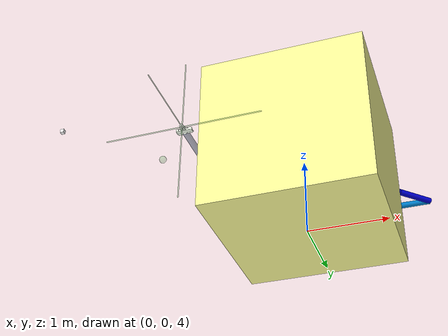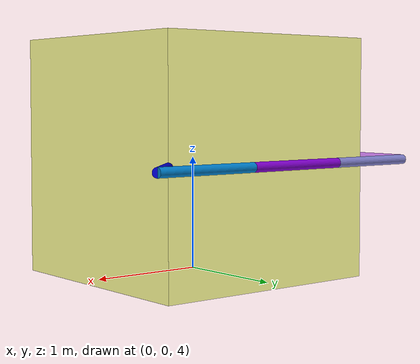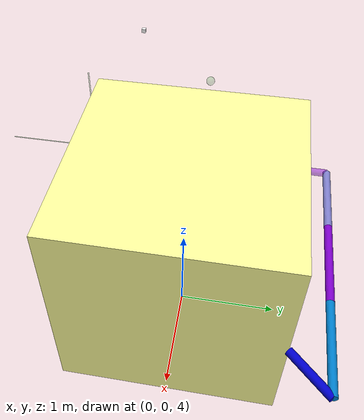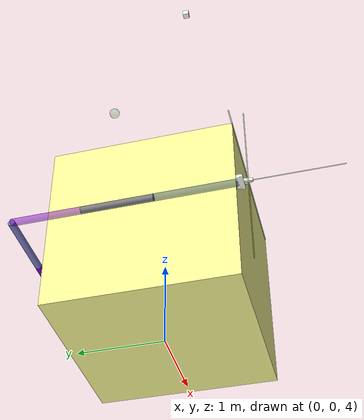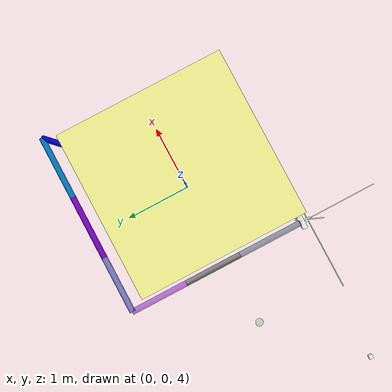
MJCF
<?xml version="1.0" ?>
<mujoco model="free_floating_spacecraft_manipulator">
    <compiler angle="radian" coordinate="local"/>
    <option timestep="0.002" iterations="20">
        <flag gravity="disable" />
    </option>
    <asset>
        <texture name="texplane" type="2d" builtin="checker" rgb1=".2 .3 .4" rgb2=".1 0.15 0.2" width="512" height="512"/>
        <material name="MatGnd" reflectance="0.5" texture="texplane" texrepeat="1 1" texuniform="true"/>
        <material name="block_mat" specular="0" shininess="0.5" reflectance="0" rgba="1 1 1 1"/>
        <mesh name="hand_col" file="meshes/collision/hand.stl"/>
        <mesh name="finger_col" file="meshes/collision/finger.stl" scale='1.75 1.0 1.75'/>
        <mesh name="hand_viz" file="meshes/visual/hand.stl"/>
        <mesh name="finger_viz" file="meshes/collision/finger.stl" scale='1.75 1.0 1.75'/>
    </asset>
    <size njmax="500" nconmax="100" />

    <default>
        <default class="panda">
            <joint pos="0 0 0" axis="0 0 1" limited="true"/>
            <position forcelimited="true" ctrllimited="true" user="1002 40 2001 -0.005 0.005"/>
            <default class="spaceRobot_viz">
                <geom contype="0" conaffinity="0" group="0" type="mesh" rgba=".95 .99 .92 1" mass="0"/>
            </default>

            <default class="spaceRobot_col">
                <geom contype="1" conaffinity="1" group="3" type="mesh" rgba=".5 .6 .7 1"/>
            </default>

             <default class="spaceRobot_finger">
                <joint damping="100" armature='5'/>
                <geom friction="1 0.5 0.0001" solref="0.01 1" solimp="0.8 0.9 0.001" margin="0.001" user="0" rgba="0.5 0.6 0.7 .4" contype="1" conaffinity="0" condim="6" group="3" />
                <position user="1002 40 2001 -0.0001 0.0001"/>
            </default>
        </default>
    </default>

    <worldbody>
        <light directional="false" diffuse=".8 .8 .8" specular="0.3 0.3 0.3" pos="1  1 3" dir="-1 -1 -3"/>
        <light directional="false" diffuse=".8 .8 .8" specular="0.3 0.3 0.3" pos="1 -1 3" dir="-1 1 -3"/>
        <light directional="false" diffuse=".8 .8 .8" specular="0.3 0.3 0.3" pos="-1 0 3" dir="1 0 -3" />
        <site name="target0" pos="-2 0 5.5" rgba="0.2 0.6 0.2 0.25" size=".05" type="sphere" />

        <body mocap="true" name="spacecraft_mocap" pos="-1.20130298 -1.20384954  5. ">
            <geom conaffinity="0" contype="0" pos="0 0 0" rgba="0 0.5 0 0.7" size="0.005 0.005 0.005" type="box"/>
            <geom conaffinity="0" contype="0" pos="0 0 0" rgba="0 0.5 0 0.1" size="1 0.005 0.005" type="box"/>
            <geom conaffinity="0" contype="0" pos="0 0 0" rgba="0 0.5 0 0.1" size="0.005 1 0.001" type="box"/>
            <geom conaffinity="0" contype="0" pos="0 0 0" rgba="0 0.5 0 0.1" size="0.005 0.005 1" type="box"/>
        </body>

        <body name="object0" pos="-3 -1 5.5">
            <joint name="object0:joint" type="free" damping="0.01"/>
            <geom size="0.025 0.025 0.025" type="box" condim="3" name="object0" material="block_mat" mass="2"/>
            <site name="object0" pos="0 0 0" size="0.02 0.02 0.02" rgba="1 0 0 1"/>
        </body>

        <body name="spacecraft_base" pos="0 0 5" >
            <site name="baseSite" pos="0 0 0" type="sphere" size="0.01" rgba="0.1 0.2 0.3 1" />
            <inertial mass="100" pos="0 0 0" diaginertia="1400 1400 1040"/>
            <joint name="spacecraft_BasefloatingJoint" type="free" damping="1e+11" />
            <geom size="1.05 1.05 1.05" type="box" rgba="1 1 0.6 1" />
            <body name="spacecraft_link1" pos="1.2268 1.2268 0" quat="0.653281 -0.653281 0.270598 -0.270598">
                <inertial pos="0 0 0" mass="20" diaginertia="0.1 0.1 0.1" />
                <joint name="spacecraft_joint1" pos="0 0 0" axis="0 0 1" limited="true" range="-2.8973 2.8973" damping="200"/>
                <geom size="0.04 0.25" type="cylinder" rgba="0 0 0.8 1" />
                <body name="spacecraft_link2" pos="-0.3182 0 -0.0682" euler="0 -2.355 0">
                    <inertial pos="0 0 0" quat="0.5 0.5 0.5 0.5" mass="30" diaginertia="25 25 0.25" />
                    <joint name="spacecraft_joint2" pos="0 0 -0.45" axis="0 1 0" limited="true" range="-1.7628 1.7628" damping="200"/>
                    <geom size="0.04 0.45" type="cylinder" rgba="0 0.5 0.8 1" />
                    <body name="spacecraft_link3" pos="0 0 0.90" euler="0 0 0">
                        <inertial pos="0 0 0" quat="0.5 0.5 0.5 0.5" mass="30" diaginertia="25 25 0.25" />
                        <joint name="spacecraft_joint3" pos="0 0 -0.45" axis="1 0 0" limited="true" range="-1.7628 1.7628" damping="200"/>
                        <geom size="0.04 0.45" type="cylinder" rgba="0.5 0 0.8 1" />
                        <body name="spacecraft_link4" pos="0 0 0.85" euler="0 0 0">
                            <inertial pos="0 0 0" quat="0.5 0.5 0.5 0.5" mass="20" diaginertia="25 25 0.25" />
                            <joint name="spacecraft_joint4" pos="0 0 -0.4" axis="0 1 0" limited="true" range="-1.7628 1.7628" damping="200"/>
                            <geom size="0.04 0.4" type="cylinder" rgba="0.5 0.5 0.8 1" />
                            <body name="spacecraft_link5" pos="-0.4 0 0.4" euler="0 -1.57 0">
                                <inertial pos="0 0 0" quat="0.5 0.5 0.5 0.5" mass="20" diaginertia="25 25 0.25" />
                                <joint name="spacecraft_joint5" pos="0 0 -0.4" axis="1 0 0" limited="true" range="-1.7628 1.7628" damping="200"/>
                                <geom size="0.04 0.4" type="cylinder" rgba="0.5 0 0.8 0.5" />
                                <body name="spacecraft_link6" pos="0 0 0.8" euler="0 0 0">
                                    <inertial pos="0 0 0" quat="0.5 0.5 0.5 0.5" mass="20" diaginertia="25 25 0.25" />
                                    <joint name="spacecraft_joint6" pos="0 0 -0.4" axis="0 1 0" limited="true" range="-1.7628 1.7628" damping="200"/>
                                    <geom size="0.04 0.4" type="cylinder" rgba="0.5 0.5 0.5 1" />
                                    <body name="spacecraft_link7" pos="0 0 0.85" euler="0 0 0">
                                        <inertial pos="0 0 0" quat="0.5 0.5 0.5 0.5" mass="20" diaginertia="25 25 0.25" />
                                        <joint name="spacecraft_joint7" pos="0 0 0" axis="0 0 1" limited="true" range="-1.7628 1.7628" damping="200" />
                                        <geom size="0.04 0.45" type="cylinder" rgba="0.2 0.3 0.4 0.5" />
                                        <geom pos="0 0 0.45" euler='0 0 -1.57' class="spaceRobot_viz" mesh="hand_viz"/>
                                        <geom pos="0 0 0.45" euler='0 0 -1.57' class="spaceRobot_col" mesh="hand_col" mass="0.81909"/>
                                        <site name='gripper' pos='0 0 0.56' size='.01' type="sphere" euler='0 0 -0.785398'/>

                                        <body name="leftfingerJoint" pos="0 0 0.5154" euler='0 0 -1.57' childclass='spaceRobot_finger'>
                                            <inertial pos="-1.57863e-05 0.0118731 0.0434103" quat="0.705868 0.0310348 -0.0314925 0.706962" mass="0.0927059" diaginertia="6.57134e-05 6.09611e-05 1.09932e-05" />
                                            <joint name="spacecraft_finger_joint1"  axis="0 1 0" type="slide" range="0 0.04" class="spaceRobot_finger"/>

                                            <geom class="spaceRobot_viz" mesh="finger_viz"/>
                                            <geom size="0.0070" fromto=".009 .006 .0875   -.009 .009 .0875" type="capsule" />
                                            <geom size="0.0070" fromto=".009 .009 .0875   -.009 .006 .0875" type="capsule" />

                                            <geom size="0.0075" fromto=".009 .007 .0775   -.009 .010 .0775" type="capsule" />
                                            <geom size="0.0075" fromto=".009 .010 .0775   -.009 .007 .0775" type="capsule" />

                                            <geom size="0.0082" fromto=".009 .008 .0675   -.009 .011 .0675" type="capsule" />
                                            <geom size="0.0082" fromto=".009 .011 .0675   -.009 .008 .0675" type="capsule" />

                                            <geom size="0.0090" fromto=".009 .009 .0575   -.009 .012 .0575" type="capsule" />
                                            <geom size="0.0090" fromto=".009 .012 .0575   -.009 .009 .0575" type="capsule" />

                                            <geom size="0.0100" fromto=".009 .0105 .0475   -.009 .0135 .0475" type="capsule" />
                                            <geom size="0.0100" fromto=".009 .0135 .0475   -.009 .0105 .0475" type="capsule" />

                                            <geom size="0.0110" fromto=".009 .012 .035   -.009 .015 .035" type="capsule" />
                                            <geom size="0.0110" fromto=".009 .015 .035   -.009 .012 .035" type="capsule" />

                                            <geom size="0.0185 0.0120 0.0175" pos="0 0.014 0.015" type="box" euler='.03 0 0' />
                                        </body>

                                        <body name="rightfingerJoint" pos="0 0 0.5154" euler='0 0 -1.57'  childclass='spaceRobot_finger'>
                                            <inertial pos="1.57863e-05 -0.0118731 0.0434103" quat="0.705868 -0.0310348 0.0314925 0.706962" mass="0.0927059" diaginertia="6.57134e-05 6.09611e-05 1.09932e-05" />
                                            <joint name="spacecraft_finger_joint2" axis="0 -1 0" type="slide" range="0 0.04" class="spaceRobot_finger"/>

                                            <geom quat="0 0 0 1" class="spaceRobot_viz" mesh="finger_viz"/>
                                            <geom size="0.0070" fromto=".009 -.006 .0875   -.009 -.009 .0875" type="capsule" />
                                            <geom size="0.0070" fromto=".009 -.009 .0875   -.009 -.006 .0875" type="capsule" />

                                            <geom size="0.0075" fromto=".009 -.007 .0775   -.009 -.010 .0775" type="capsule" />
                                            <geom size="0.0075" fromto=".009 -.010 .0775   -.009 -.007 .0775" type="capsule" />

                                            <geom size="0.0082" fromto=".009 -.008 .0675   -.009 -.011 .0675" type="capsule" />
                                            <geom size="0.0082" fromto=".009 -.011 .0675   -.009 -.008 .0675" type="capsule" />

                                            <geom size="0.0090" fromto=".009 -.009 .0575   -.009 -.012 .0575" type="capsule" />
                                            <geom size="0.0090" fromto=".009 -.012 .0575   -.009 -.009 .0575" type="capsule" />

                                            <geom size="0.0100" fromto=".009 -.0105 .0475   -.009 -.0135 .0475" type="capsule" />
                                            <geom size="0.0100" fromto=".009 -.0135 .0475   -.009 -.0105 .0475" type="capsule" />

                                            <geom size="0.0110" fromto=".009 -.012 .035   -.009 -.015 .035" type="capsule" />
                                            <geom size="0.0110" fromto=".009 -.015 .035   -.009 -.012 .035" type="capsule" />

                                            <geom size="0.0185 0.0120 0.0175" pos="0 -.014 0.015" type="box" euler='-.03 0 0' />
                                        </body>
                                    </body>
                                </body>
                            </body>
                        </body>
                    </body>
                </body>
            </body>
        </body>
    </worldbody>

    <equality>
        <weld body1="spacecraft_mocap" body2="spacecraft_link7" solimp="0.9 0.95 0.001" solref="0.02 1"/>
    </equality>

    <contact>
        <exclude body1="spacecraft_base" body2="spacecraft_link1" />
        <exclude body1="spacecraft_base" body2="spacecraft_link2" />
        <exclude body1="spacecraft_base" body2="spacecraft_link3" />
        <exclude body1="spacecraft_base" body2="spacecraft_link4" />
        <exclude body1="spacecraft_base" body2="spacecraft_link5" />
        <exclude body1="spacecraft_base" body2="spacecraft_link6" />
        <exclude body1="spacecraft_base" body2="spacecraft_link7" />
    </contact>

    <actuator>

        <position ctrllimited="true" ctrlrange="0 0.2" joint="spacecraft_finger_joint1" kp="30000" name="leftfingerJoint"/>
        <position ctrllimited="true" ctrlrange="0 0.2" joint="spacecraft_finger_joint2" kp="30000" name="rightfingerJoint"/>

    </actuator>

    <sensor>
        <gyro name="baseGyro" site="baseSite" noise="0.001" />
        <accelerometer name="baseAccel" site="baseSite" noise="0.001" />
        <jointpos name="encoderPos1" joint="spacecraft_joint1" noise="0.001" />
        <jointpos name="encoderPos2" joint="spacecraft_joint2" noise="0.001" />
        <jointpos name="encoderPos3" joint="spacecraft_joint3" noise="0.001" />
        <jointpos name="encoderPos4" joint="spacecraft_joint4" noise="0.001" />
        <jointpos name="encoderPos5" joint="spacecraft_joint5" noise="0.001" />
        <jointpos name="encoderPos6" joint="spacecraft_joint6" noise="0.001" />
        <jointpos name="encoderPos7" joint="spacecraft_joint7" noise="0.001" />

        <jointvel name="encoderVel1" joint="spacecraft_joint1" noise="0.001" />
        <jointvel name="encoderVel2" joint="spacecraft_joint2" noise="0.001" />
        <jointvel name="encoderVel3" joint="spacecraft_joint3" noise="0.001" />
        <jointvel name="encoderVel4" joint="spacecraft_joint4" noise="0.001" />
        <jointvel name="encoderVel5" joint="spacecraft_joint5" noise="0.001" />
        <jointvel name="encoderVel6" joint="spacecraft_joint6" noise="0.001" />
        <jointvel name="encoderVel7" joint="spacecraft_joint7" noise="0.001" />
    </sensor>

</mujoco>
